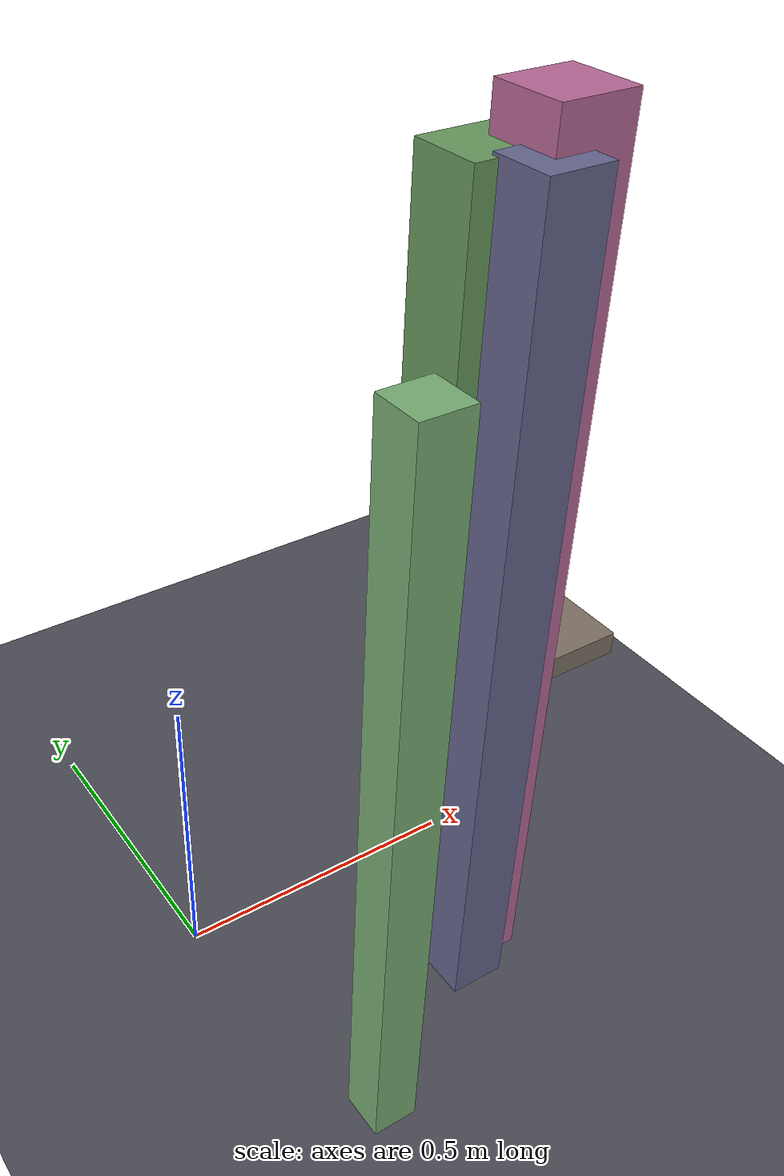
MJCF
<mujoco model="pillar_avoid_2">
  <compiler angle="radian" autolimits="true" boundmass="0" balanceinertia="true"/>
  <option impratio="10" gravity="0 0 -9.8" integrator="implicitfast" cone="elliptic" jacobian="sparse" noslip_iterations="4">
    <flag multiccd="enable" contact="enable" warmstart="enable"/>
  </option>
  <size njmax="6000" nconmax="6000"/>
  <visual><global offwidth="1280" offheight="720"/><map znear="0.001"/>
    <headlight ambient="0.45 0.45 0.45" diffuse="0.6 0.6 0.6"/></visual>
  <worldbody>
    <light pos="0.4 0.4 3" dir="0 0 -1" diffuse="0.7 0.7 0.7"/>
    <!-- Obstacle-avoidance variant 2: 4 tall PHYSICAL pillars; placements blocking >10%
         of exo-camera sightlines to the arm excluded (training view preserved). -->
    <body name="pillars" pos="0 0 0"><geom name="floor" type="plane" size="5 5 0.1" pos="0 0 0" rgba="0.30 0.30 0.34 1" contype="8" conaffinity="15"/><geom name="obj_pad" type="box" pos="0.60 0 0.42" size="0.14 0.14 0.02" rgba="0.5 0.45 0.4 1" contype="8" conaffinity="15"/><geom name="pillar_0" type="box" pos="0.396 -0.239 0.689" size="0.055 0.055 0.689" contype="8" conaffinity="15" rgba="0.72 0.41 0.59 1"/><geom name="pillar_1" type="box" pos="0.324 -0.196 0.659" size="0.053 0.053 0.659" contype="8" conaffinity="15" rgba="0.41 0.60 0.37 1"/><geom name="pillar_2" type="box" pos="0.349 -0.284 0.661" size="0.046 0.046 0.661" contype="8" conaffinity="15" rgba="0.40 0.40 0.56 1"/><geom name="pillar_5" type="box" pos="0.081 -0.437 0.594" size="0.036 0.036 0.594" contype="8" conaffinity="15" rgba="0.47 0.68 0.46 1"/></body>
  </worldbody>
</mujoco>
